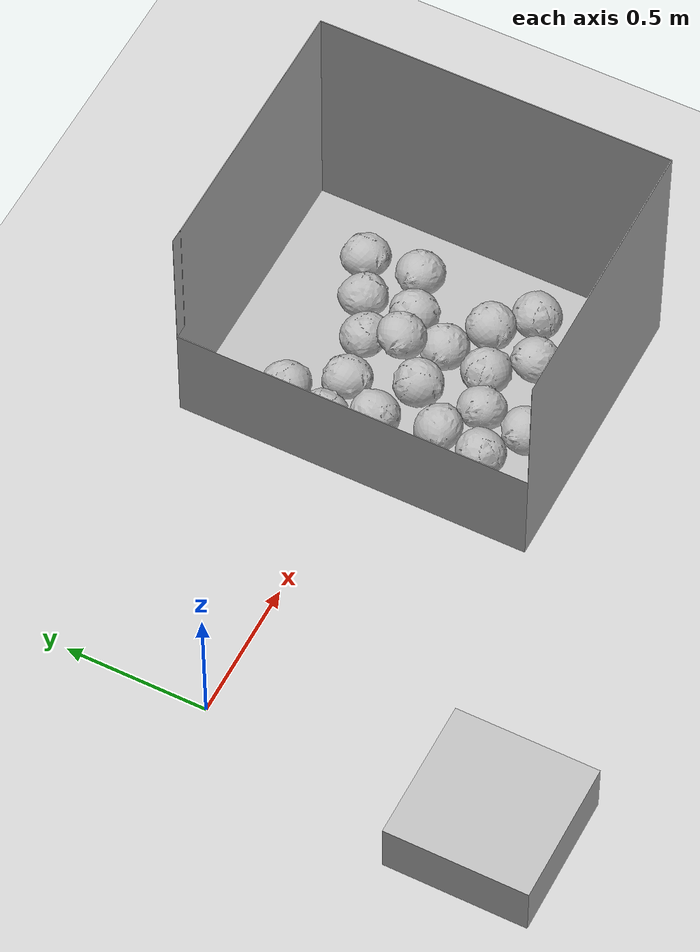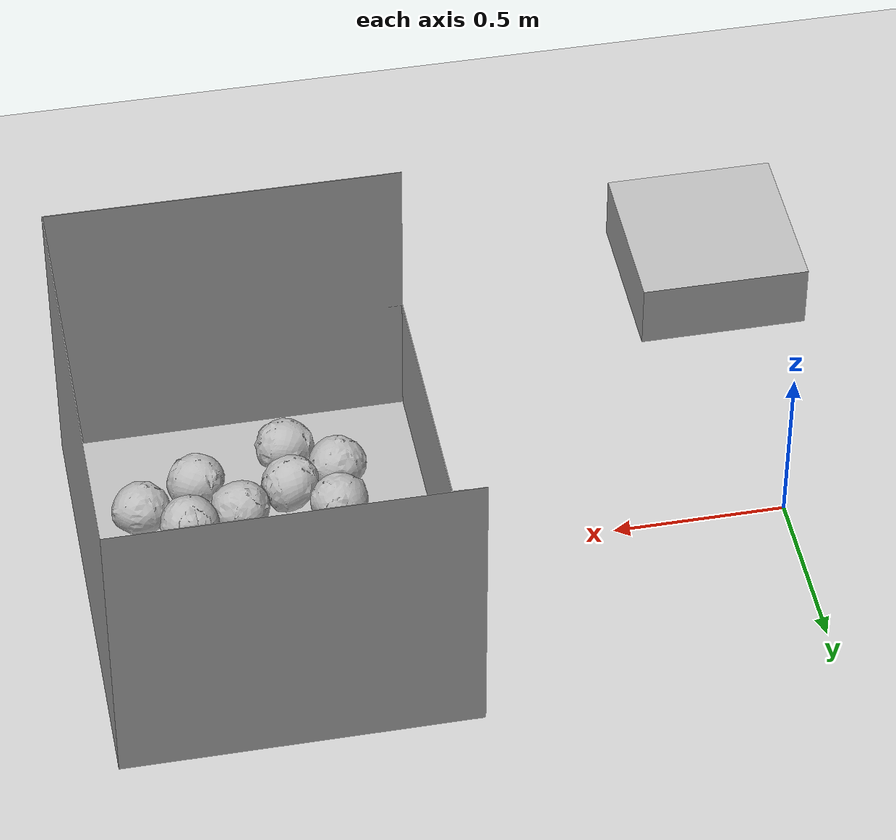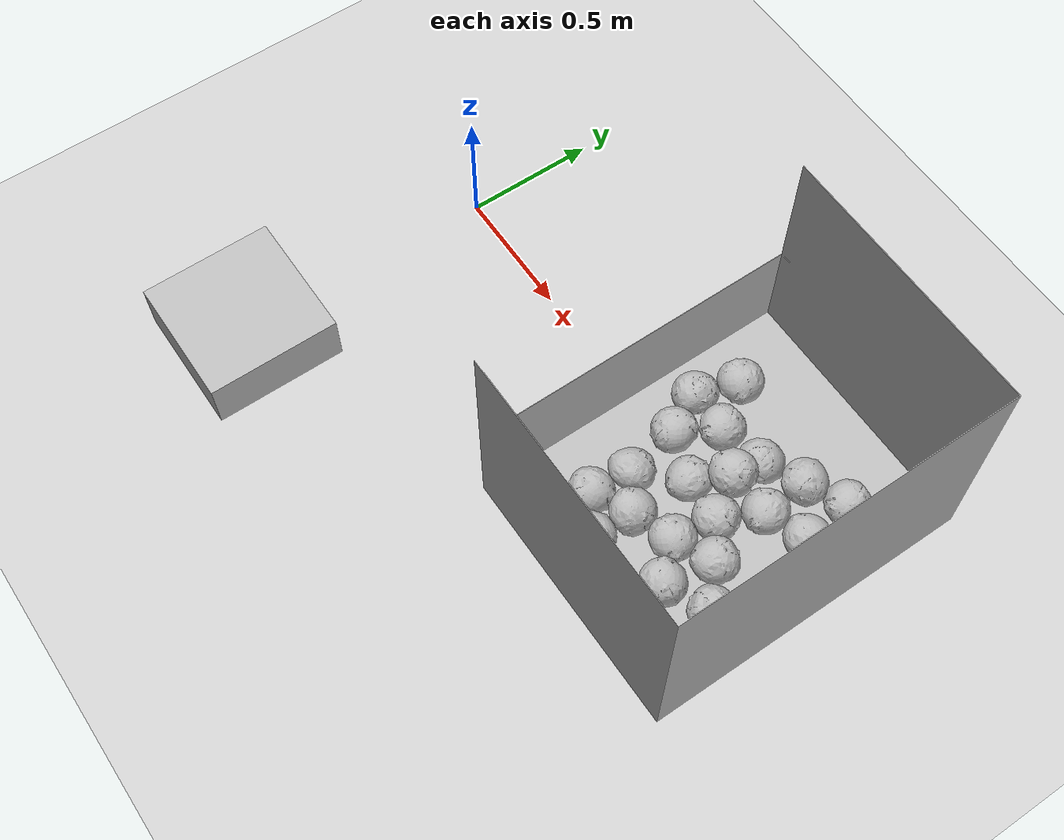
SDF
<sdf version="1.6">
 <world name="default">
  <model name="ground_plane">
   <static>1</static>
   <link name="link">
    <collision name="collision">
     <geometry><plane><normal>0 0 1</normal><size>100 100</size></plane></geometry>
     <surface>
      <contact><collide_bitmask>65535</collide_bitmask></contact>
      <friction><ode><mu>100</mu><mu2>50</mu2></ode></friction>
     </surface>
    </collision>
    <visual name="visual">
     <cast_shadows>0</cast_shadows>
     <geometry><plane><normal>0 0 1</normal><size>100 100</size></plane></geometry>
     <material>
      <script><uri>file://media/materials/scripts/gazebo.material</uri><name>Gazebo/Grey</name></script>
     </material>
    </visual>
   </link>
  </model>
  <light name="sun" type="directional">
   <pose>0 0 10 0 -0 0</pose>
   <diffuse>0.8 0.8 0.8 1</diffuse>
   <specular>0.2 0.2 0.2 1</specular>
   <attenuation>
    <range>1000</range>
    <constant>0.9</constant>
    <linear>0.01</linear>
    <quadratic>0.001</quadratic>
   </attenuation>
   <direction>-0.5 0.1 -0.9</direction>
  </light>
  <model name="mytable">
   <link name="link">
    <inertial>
     <mass>1</mass>
     <inertia><ixx>0.083</ixx><ixy>0</ixy><ixz>0</ixz><iyy>0.083</iyy><iyz>0</iyz><izz>0.083</izz></inertia>
    </inertial>
    <collision name="collision"><geometry><box><size>0.5 0.5 0.2</size></box></geometry></collision>
    <visual name="visual"><geometry><box><size>0.5 0.5 0.2</size></box></geometry></visual>
   </link>
   <pose>-0 -1 0.1 0 -0 0</pose>
  </model>
  <model name="container">
   <static>1</static>
   <link name="link">
    <inertial>
     <mass>1</mass>
     <inertia><ixx>1</ixx><ixy>0</ixy><ixz>0</ixz><iyy>1</iyy><iyz>0</iyz><izz>1</izz></inertia>
    </inertial>
    <collision name="collision">
     <geometry>
      <mesh>
       <scale>0.001 0.001 0.001</scale>
       <uri>model://big_container_open/big_container_open_meshlab.dae</uri>
      </mesh>
     </geometry>
     <surface>
      <friction><ode><mu>0.6</mu><mu2>0.6</mu2></ode></friction>
      <contact><ode><max_vel>0.1</max_vel><min_depth>0.0001</min_depth></ode></contact>
     </surface>
    </collision>
    <visual name="visual">
     <geometry>
      <mesh>
       <scale>0.001 0.001 0.001</scale>
       <uri>model://big_container_open/big_container_open_meshlab.dae</uri>
      </mesh>
     </geometry>
    </visual>
   </link>
   <pose>1.5 0 0 0 0 -1.57</pose>
  </model>
  <gravity>0 0 -9.8</gravity>
  <magnetic_field>6e-06 2.3e-05 -4.2e-05</magnetic_field>
  <atmosphere type="adiabatic"/>
  <physics name="default_physics" default="0" type="ode">
   <max_step_size>0.001</max_step_size>
   <real_time_factor>1</real_time_factor>
   <real_time_update_rate>1000</real_time_update_rate>
  </physics>
  <scene><ambient>0.4 0.4 0.4 1</ambient><background>0.7 0.7 0.7 1</background><shadows>1</shadows></scene>
  <audio><device>default</device></audio>
  <spherical_coordinates>
   <surface_model>EARTH_WGS84</surface_model>
   <latitude_deg>0</latitude_deg>
   <longitude_deg>0</longitude_deg>
   <elevation>0</elevation>
   <heading_deg>0</heading_deg>
  </spherical_coordinates>
  <model name="cabbage_1">
   <link name="link">
    <inertial>
     <mass>1</mass>
     <inertia><ixx>0.001</ixx><ixy>0</ixy><ixz>0</ixz><iyy>0.001</iyy><iyz>0</iyz><izz>0.001</izz></inertia>
    </inertial>
    <collision name="collision">
     <geometry>
      <mesh><scale>0.0015 0.0015 0.0015</scale><uri>model://cabbage/cabbage_single.dae</uri></mesh>
     </geometry>
     <surface>
      <friction><ode><mu>0.8</mu><mu2>0.8</mu2></ode></friction>
      <contact><ode><max_vel>0.1</max_vel><min_depth>0.0001</min_depth></ode></contact>
     </surface>
    </collision>
    <visual name="visual">
     <geometry>
      <mesh><scale>0.0015 0.0015 0.0015</scale><uri>model://cabbage/cabbage_single.dae</uri></mesh>
     </geometry>
     <material><script><uri>model://cabbage/texture.material</uri><name>CabbageTexture</name></script></material>
    </visual>
   </link>
   <pose>1.55783 -0.053624 0.005186 1.49028 0.084769 -0.562348</pose>
  </model>
  <model name="cabbage_2">
   <link name="link">
    <inertial>
     <mass>1</mass>
     <inertia><ixx>0.001</ixx><ixy>0</ixy><ixz>0</ixz><iyy>0.001</iyy><iyz>0</iyz><izz>0.001</izz></inertia>
    </inertial>
    <collision name="collision">
     <geometry>
      <mesh><scale>0.0015 0.0015 0.0015</scale><uri>model://cabbage/cabbage_single.dae</uri></mesh>
     </geometry>
     <surface>
      <friction><ode><mu>0.8</mu><mu2>0.8</mu2></ode></friction>
      <contact><ode><max_vel>0.1</max_vel><min_depth>0.0001</min_depth></ode></contact>
     </surface>
    </collision>
    <visual name="visual">
     <geometry>
      <mesh><scale>0.0015 0.0015 0.0015</scale><uri>model://cabbage/cabbage_single.dae</uri></mesh>
     </geometry>
     <material><script><uri>model://cabbage/texture.material</uri><name>CabbageTexture</name></script></material>
    </visual>
   </link>
   <pose>1.78086 0.150384 0.008973 1.32484 0.1546 -0.827988</pose>
  </model>
  <model name="cabbage_3">
   <link name="link">
    <inertial>
     <mass>1</mass>
     <inertia><ixx>0.001</ixx><ixy>0</ixy><ixz>0</ixz><iyy>0.001</iyy><iyz>0</iyz><izz>0.001</izz></inertia>
    </inertial>
    <collision name="collision">
     <geometry>
      <mesh><scale>0.0015 0.0015 0.0015</scale><uri>model://cabbage/cabbage_single.dae</uri></mesh>
     </geometry>
     <surface>
      <friction><ode><mu>0.8</mu><mu2>0.8</mu2></ode></friction>
      <contact><ode><max_vel>0.1</max_vel><min_depth>0.0001</min_depth></ode></contact>
     </surface>
    </collision>
    <visual name="visual">
     <geometry>
      <mesh><scale>0.0015 0.0015 0.0015</scale><uri>model://cabbage/cabbage_single.dae</uri></mesh>
     </geometry>
     <material><script><uri>model://cabbage/texture.material</uri><name>CabbageTexture</name></script></material>
    </visual>
   </link>
   <pose>1.28497 0.159976 0.013519 1.5915 0.36177 0.692483</pose>
  </model>
  <model name="cabbage_4">
   <link name="link">
    <inertial>
     <mass>1</mass>
     <inertia><ixx>0.001</ixx><ixy>0</ixy><ixz>0</ixz><iyy>0.001</iyy><iyz>0</iyz><izz>0.001</izz></inertia>
    </inertial>
    <collision name="collision">
     <geometry>
      <mesh><scale>0.0015 0.0015 0.0015</scale><uri>model://cabbage/cabbage_single.dae</uri></mesh>
     </geometry>
     <surface>
      <friction><ode><mu>0.8</mu><mu2>0.8</mu2></ode></friction>
      <contact><ode><max_vel>0.1</max_vel><min_depth>0.0001</min_depth></ode></contact>
     </surface>
    </collision>
    <visual name="visual">
     <geometry>
      <mesh><scale>0.0015 0.0015 0.0015</scale><uri>model://cabbage/cabbage_single.dae</uri></mesh>
     </geometry>
     <material><script><uri>model://cabbage/texture.material</uri><name>CabbageTexture</name></script></material>
    </visual>
   </link>
   <pose>1.81323 -0.260965 0.005202 1.4714 -0.129106 2.60158</pose>
  </model>
  <model name="cabbage_5">
   <link name="link">
    <inertial>
     <mass>1</mass>
     <inertia><ixx>0.001</ixx><ixy>0</ixy><ixz>0</ixz><iyy>0.001</iyy><iyz>0</iyz><izz>0.001</izz></inertia>
    </inertial>
    <collision name="collision">
     <geometry>
      <mesh><scale>0.0015 0.0015 0.0015</scale><uri>model://cabbage/cabbage_single.dae</uri></mesh>
     </geometry>
     <surface>
      <friction><ode><mu>0.8</mu><mu2>0.8</mu2></ode></friction>
      <contact><ode><max_vel>0.1</max_vel><min_depth>0.0001</min_depth></ode></contact>
     </surface>
    </collision>
    <visual name="visual">
     <geometry>
      <mesh><scale>0.0015 0.0015 0.0015</scale><uri>model://cabbage/cabbage_single.dae</uri></mesh>
     </geometry>
     <material><script><uri>model://cabbage/texture.material</uri><name>CabbageTexture</name></script></material>
    </visual>
   </link>
   <pose>1.3543 -0.280432 0.027411 1.07284 0.351418 -0.90455</pose>
  </model>
  <model name="cabbage_6">
   <link name="link">
    <inertial>
     <mass>1</mass>
     <inertia><ixx>0.001</ixx><ixy>0</ixy><ixz>0</ixz><iyy>0.001</iyy><iyz>0</iyz><izz>0.001</izz></inertia>
    </inertial>
    <collision name="collision">
     <geometry>
      <mesh><scale>0.0015 0.0015 0.0015</scale><uri>model://cabbage/cabbage_single.dae</uri></mesh>
     </geometry>
     <surface>
      <friction><ode><mu>0.8</mu><mu2>0.8</mu2></ode></friction>
      <contact><ode><max_vel>0.1</max_vel><min_depth>0.0001</min_depth></ode></contact>
     </surface>
    </collision>
    <visual name="visual">
     <geometry>
      <mesh><scale>0.0015 0.0015 0.0015</scale><uri>model://cabbage/cabbage_single.dae</uri></mesh>
     </geometry>
     <material><script><uri>model://cabbage/texture.material</uri><name>CabbageTexture</name></script></material>
    </visual>
   </link>
   <pose>1.40915 -0.038658 0.006752 1.44633 -0.207202 0.685195</pose>
  </model>
  <model name="cabbage_7">
   <link name="link">
    <inertial>
     <mass>1</mass>
     <inertia><ixx>0.001</ixx><ixy>0</ixy><ixz>0</ixz><iyy>0.001</iyy><iyz>0</iyz><izz>0.001</izz></inertia>
    </inertial>
    <collision name="collision">
     <geometry>
      <mesh><scale>0.0015 0.0015 0.0015</scale><uri>model://cabbage/cabbage_single.dae</uri></mesh>
     </geometry>
     <surface>
      <friction><ode><mu>0.8</mu><mu2>0.8</mu2></ode></friction>
      <contact><ode><max_vel>0.1</max_vel><min_depth>0.0001</min_depth></ode></contact>
     </surface>
    </collision>
    <visual name="visual">
     <geometry>
      <mesh><scale>0.0015 0.0015 0.0015</scale><uri>model://cabbage/cabbage_single.dae</uri></mesh>
     </geometry>
     <material><script><uri>model://cabbage/texture.material</uri><name>CabbageTexture</name></script></material>
    </visual>
   </link>
   <pose>1.6504 0.098709 0.006726 1.38169 -0.075999 1.21904</pose>
  </model>
  <model name="cabbage_8">
   <link name="link">
    <inertial>
     <mass>1</mass>
     <inertia><ixx>0.001</ixx><ixy>0</ixy><ixz>0</ixz><iyy>0.001</iyy><iyz>0</iyz><izz>0.001</izz></inertia>
    </inertial>
    <collision name="collision">
     <geometry>
      <mesh><scale>0.0015 0.0015 0.0015</scale><uri>model://cabbage/cabbage_single.dae</uri></mesh>
     </geometry>
     <surface>
      <friction><ode><mu>0.8</mu><mu2>0.8</mu2></ode></friction>
      <contact><ode><max_vel>0.1</max_vel><min_depth>0.0001</min_depth></ode></contact>
     </surface>
    </collision>
    <visual name="visual">
     <geometry>
      <mesh><scale>0.0015 0.0015 0.0015</scale><uri>model://cabbage/cabbage_single.dae</uri></mesh>
     </geometry>
     <material><script><uri>model://cabbage/texture.material</uri><name>CabbageTexture</name></script></material>
    </visual>
   </link>
   <pose>1.22626 0.042976 0.011914 1.25424 0.202889 -3.07617</pose>
  </model>
  <model name="cabbage_9">
   <link name="link">
    <inertial>
     <mass>1</mass>
     <inertia><ixx>0.001</ixx><ixy>0</ixy><ixz>0</ixz><iyy>0.001</iyy><iyz>0</iyz><izz>0.001</izz></inertia>
    </inertial>
    <collision name="collision">
     <geometry>
      <mesh><scale>0.0015 0.0015 0.0015</scale><uri>model://cabbage/cabbage_single.dae</uri></mesh>
     </geometry>
     <surface>
      <friction><ode><mu>0.8</mu><mu2>0.8</mu2></ode></friction>
      <contact><ode><max_vel>0.1</max_vel><min_depth>0.0001</min_depth></ode></contact>
     </surface>
    </collision>
    <visual name="visual">
     <geometry>
      <mesh><scale>0.0015 0.0015 0.0015</scale><uri>model://cabbage/cabbage_single.dae</uri></mesh>
     </geometry>
     <material><script><uri>model://cabbage/texture.material</uri><name>CabbageTexture</name></script></material>
    </visual>
   </link>
   <pose>1.63332 -0.333724 0.012117 1.24788 0.211338 -1.60179</pose>
  </model>
  <model name="cabbage_10">
   <link name="link">
    <inertial>
     <mass>1</mass>
     <inertia><ixx>0.001</ixx><ixy>0</ixy><ixz>0</ixz><iyy>0.001</iyy><iyz>0</iyz><izz>0.001</izz></inertia>
    </inertial>
    <collision name="collision">
     <geometry>
      <mesh><scale>0.0015 0.0015 0.0015</scale><uri>model://cabbage/cabbage_single.dae</uri></mesh>
     </geometry>
     <surface>
      <friction><ode><mu>0.8</mu><mu2>0.8</mu2></ode></friction>
      <contact><ode><max_vel>0.1</max_vel><min_depth>0.0001</min_depth></ode></contact>
     </surface>
    </collision>
    <visual name="visual">
     <geometry>
      <mesh><scale>0.0015 0.0015 0.0015</scale><uri>model://cabbage/cabbage_single.dae</uri></mesh>
     </geometry>
     <material><script><uri>model://cabbage/texture.material</uri><name>CabbageTexture</name></script></material>
    </visual>
   </link>
   <pose>1.2371 -0.345624 0.004522 1.5135 -0.054155 2.83219</pose>
  </model>
  <model name="cabbage_11">
   <link name="link">
    <inertial>
     <mass>1</mass>
     <inertia><ixx>0.001</ixx><ixy>0</ixy><ixz>0</ixz><iyy>0.001</iyy><iyz>0</iyz><izz>0.001</izz></inertia>
    </inertial>
    <collision name="collision">
     <geometry>
      <mesh><scale>0.0015 0.0015 0.0015</scale><uri>model://cabbage/cabbage_single.dae</uri></mesh>
     </geometry>
     <surface>
      <friction><ode><mu>0.8</mu><mu2>0.8</mu2></ode></friction>
      <contact><ode><max_vel>0.1</max_vel><min_depth>0.0001</min_depth></ode></contact>
     </surface>
    </collision>
    <visual name="visual">
     <geometry>
      <mesh><scale>0.0015 0.0015 0.0015</scale><uri>model://cabbage/cabbage_single.dae</uri></mesh>
     </geometry>
     <material><script><uri>model://cabbage/texture.material</uri><name>CabbageTexture</name></script></material>
    </visual>
   </link>
   <pose>1.48554 0.171143 0.016296 1.98649 -0.162164 -2.78629</pose>
  </model>
  <model name="cabbage_12">
   <link name="link">
    <inertial>
     <mass>1</mass>
     <inertia><ixx>0.001</ixx><ixy>0</ixy><ixz>0</ixz><iyy>0.001</iyy><iyz>0</iyz><izz>0.001</izz></inertia>
    </inertial>
    <collision name="collision">
     <geometry>
      <mesh><scale>0.0015 0.0015 0.0015</scale><uri>model://cabbage/cabbage_single.dae</uri></mesh>
     </geometry>
     <surface>
      <friction><ode><mu>0.8</mu><mu2>0.8</mu2></ode></friction>
      <contact><ode><max_vel>0.1</max_vel><min_depth>0.0001</min_depth></ode></contact>
     </surface>
    </collision>
    <visual name="visual">
     <geometry>
      <mesh><scale>0.0015 0.0015 0.0015</scale><uri>model://cabbage/cabbage_single.dae</uri></mesh>
     </geometry>
     <material><script><uri>model://cabbage/texture.material</uri><name>CabbageTexture</name></script></material>
    </visual>
   </link>
   <pose>1.76082 0.336504 0.010442 1.51927 0.314669 0.441068</pose>
  </model>
  <model name="cabbage_13">
   <link name="link">
    <inertial>
     <mass>1</mass>
     <inertia><ixx>0.001</ixx><ixy>0</ixy><ixz>0</ixz><iyy>0.001</iyy><iyz>0</iyz><izz>0.001</izz></inertia>
    </inertial>
    <collision name="collision">
     <geometry>
      <mesh><scale>0.0015 0.0015 0.0015</scale><uri>model://cabbage/cabbage_single.dae</uri></mesh>
     </geometry>
     <surface>
      <friction><ode><mu>0.8</mu><mu2>0.8</mu2></ode></friction>
      <contact><ode><max_vel>0.1</max_vel><min_depth>0.0001</min_depth></ode></contact>
     </surface>
    </collision>
    <visual name="visual">
     <geometry>
      <mesh><scale>0.0015 0.0015 0.0015</scale><uri>model://cabbage/cabbage_single.dae</uri></mesh>
     </geometry>
     <material><script><uri>model://cabbage/texture.material</uri><name>CabbageTexture</name></script></material>
    </visual>
   </link>
   <pose>1.18986 0.338275 0.003551 1.57609 0.008625 1.69219</pose>
  </model>
  <model name="cabbage_14">
   <link name="link">
    <inertial>
     <mass>1</mass>
     <inertia><ixx>0.001</ixx><ixy>0</ixy><ixz>0</ixz><iyy>0.001</iyy><iyz>0</iyz><izz>0.001</izz></inertia>
    </inertial>
    <collision name="collision">
     <geometry>
      <mesh><scale>0.0015 0.0015 0.0015</scale><uri>model://cabbage/cabbage_single.dae</uri></mesh>
     </geometry>
     <surface>
      <friction><ode><mu>0.8</mu><mu2>0.8</mu2></ode></friction>
      <contact><ode><max_vel>0.1</max_vel><min_depth>0.0001</min_depth></ode></contact>
     </surface>
    </collision>
    <visual name="visual">
     <geometry>
      <mesh><scale>0.0015 0.0015 0.0015</scale><uri>model://cabbage/cabbage_single.dae</uri></mesh>
     </geometry>
     <material><script><uri>model://cabbage/texture.material</uri><name>CabbageTexture</name></script></material>
    </visual>
   </link>
   <pose>1.53649 -0.221848 0.003771 1.57797 0.023407 1.74791</pose>
  </model>
  <model name="cabbage_15">
   <link name="link">
    <inertial>
     <mass>1</mass>
     <inertia><ixx>0.001</ixx><ixy>0</ixy><ixz>0</ixz><iyy>0.001</iyy><iyz>0</iyz><izz>0.001</izz></inertia>
    </inertial>
    <collision name="collision">
     <geometry>
      <mesh><scale>0.0015 0.0015 0.0015</scale><uri>model://cabbage/cabbage_single.dae</uri></mesh>
     </geometry>
     <surface>
      <friction><ode><mu>0.8</mu><mu2>0.8</mu2></ode></friction>
      <contact><ode><max_vel>0.1</max_vel><min_depth>0.0001</min_depth></ode></contact>
     </surface>
    </collision>
    <visual name="visual">
     <geometry>
      <mesh><scale>0.0015 0.0015 0.0015</scale><uri>model://cabbage/cabbage_single.dae</uri></mesh>
     </geometry>
     <material><script><uri>model://cabbage/texture.material</uri><name>CabbageTexture</name></script></material>
    </visual>
   </link>
   <pose>1.27359 -0.21367 0.019814 1.10237 -0.31524 -0.120504</pose>
  </model>
  <model name="cabbage_16">
   <link name="link">
    <inertial>
     <mass>1</mass>
     <inertia><ixx>0.001</ixx><ixy>0</ixy><ixz>0</ixz><iyy>0.001</iyy><iyz>0</iyz><izz>0.001</izz></inertia>
    </inertial>
    <collision name="collision">
     <geometry>
      <mesh><scale>0.0015 0.0015 0.0015</scale><uri>model://cabbage/cabbage_single.dae</uri></mesh>
     </geometry>
     <surface>
      <friction><ode><mu>0.8</mu><mu2>0.8</mu2></ode></friction>
      <contact><ode><max_vel>0.1</max_vel><min_depth>0.0001</min_depth></ode></contact>
     </surface>
    </collision>
    <visual name="visual">
     <geometry>
      <mesh><scale>0.0015 0.0015 0.0015</scale><uri>model://cabbage/cabbage_single.dae</uri></mesh>
     </geometry>
     <material><script><uri>model://cabbage/texture.material</uri><name>CabbageTexture</name></script></material>
    </visual>
   </link>
   <pose>1.47331 0.083164 0.090198 1.64944 0.359671 -0.546962</pose>
  </model>
  <model name="cabbage_17">
   <link name="link">
    <inertial>
     <mass>1</mass>
     <inertia><ixx>0.001</ixx><ixy>0</ixy><ixz>0</ixz><iyy>0.001</iyy><iyz>0</iyz><izz>0.001</izz></inertia>
    </inertial>
    <collision name="collision">
     <geometry>
      <mesh><scale>0.0015 0.0015 0.0015</scale><uri>model://cabbage/cabbage_single.dae</uri></mesh>
     </geometry>
     <surface>
      <friction><ode><mu>0.8</mu><mu2>0.8</mu2></ode></friction>
      <contact><ode><max_vel>0.1</max_vel><min_depth>0.0001</min_depth></ode></contact>
     </surface>
    </collision>
    <visual name="visual">
     <geometry>
      <mesh><scale>0.0015 0.0015 0.0015</scale><uri>model://cabbage/cabbage_single.dae</uri></mesh>
     </geometry>
     <material><script><uri>model://cabbage/texture.material</uri><name>CabbageTexture</name></script></material>
    </visual>
   </link>
   <pose>1.6181 0.263779 0.008921 1.43931 -0.270922 -1.97795</pose>
  </model>
  <model name="cabbage_18">
   <link name="link">
    <inertial>
     <mass>1</mass>
     <inertia><ixx>0.001</ixx><ixy>0</ixy><ixz>0</ixz><iyy>0.001</iyy><iyz>0</iyz><izz>0.001</izz></inertia>
    </inertial>
    <collision name="collision">
     <geometry>
      <mesh><scale>0.0015 0.0015 0.0015</scale><uri>model://cabbage/cabbage_single.dae</uri></mesh>
     </geometry>
     <surface>
      <friction><ode><mu>0.8</mu><mu2>0.8</mu2></ode></friction>
      <contact><ode><max_vel>0.1</max_vel><min_depth>0.0001</min_depth></ode></contact>
     </surface>
    </collision>
    <visual name="visual">
     <geometry>
      <mesh><scale>0.0015 0.0015 0.0015</scale><uri>model://cabbage/cabbage_single.dae</uri></mesh>
     </geometry>
     <material><script><uri>model://cabbage/texture.material</uri><name>CabbageTexture</name></script></material>
    </visual>
   </link>
   <pose>1.16555 0.175083 0.013445 1.91114 -0.157759 -1.17988</pose>
  </model>
  <model name="cabbage_19">
   <link name="link">
    <inertial>
     <mass>1</mass>
     <inertia><ixx>0.001</ixx><ixy>0</ixy><ixz>0</ixz><iyy>0.001</iyy><iyz>0</iyz><izz>0.001</izz></inertia>
    </inertial>
    <collision name="collision">
     <geometry>
      <mesh><scale>0.0015 0.0015 0.0015</scale><uri>model://cabbage/cabbage_single.dae</uri></mesh>
     </geometry>
     <surface>
      <friction><ode><mu>0.8</mu><mu2>0.8</mu2></ode></friction>
      <contact><ode><max_vel>0.1</max_vel><min_depth>0.0001</min_depth></ode></contact>
     </surface>
    </collision>
    <visual name="visual">
     <geometry>
      <mesh><scale>0.0015 0.0015 0.0015</scale><uri>model://cabbage/cabbage_single.dae</uri></mesh>
     </geometry>
     <material><script><uri>model://cabbage/texture.material</uri><name>CabbageTexture</name></script></material>
    </visual>
   </link>
   <pose>1.69709 -0.162237 0.031898 1.48528 -0.065016 0.224239</pose>
  </model>
  <model name="cabbage_20">
   <link name="link">
    <inertial>
     <mass>1</mass>
     <inertia><ixx>0.001</ixx><ixy>0</ixy><ixz>0</ixz><iyy>0.001</iyy><iyz>0</iyz><izz>0.001</izz></inertia>
    </inertial>
    <collision name="collision">
     <geometry>
      <mesh><scale>0.0015 0.0015 0.0015</scale><uri>model://cabbage/cabbage_single.dae</uri></mesh>
     </geometry>
     <surface>
      <friction><ode><mu>0.8</mu><mu2>0.8</mu2></ode></friction>
      <contact><ode><max_vel>0.1</max_vel><min_depth>0.0001</min_depth></ode></contact>
     </surface>
    </collision>
    <visual name="visual">
     <geometry>
      <mesh><scale>0.0015 0.0015 0.0015</scale><uri>model://cabbage/cabbage_single.dae</uri></mesh>
     </geometry>
     <material><script><uri>model://cabbage/texture.material</uri><name>CabbageTexture</name></script></material>
    </visual>
   </link>
   <pose>1.37415 -0.421198 0.013143 1.5872 0.353566 -1.14908</pose>
  </model>
 </world>
</sdf>
